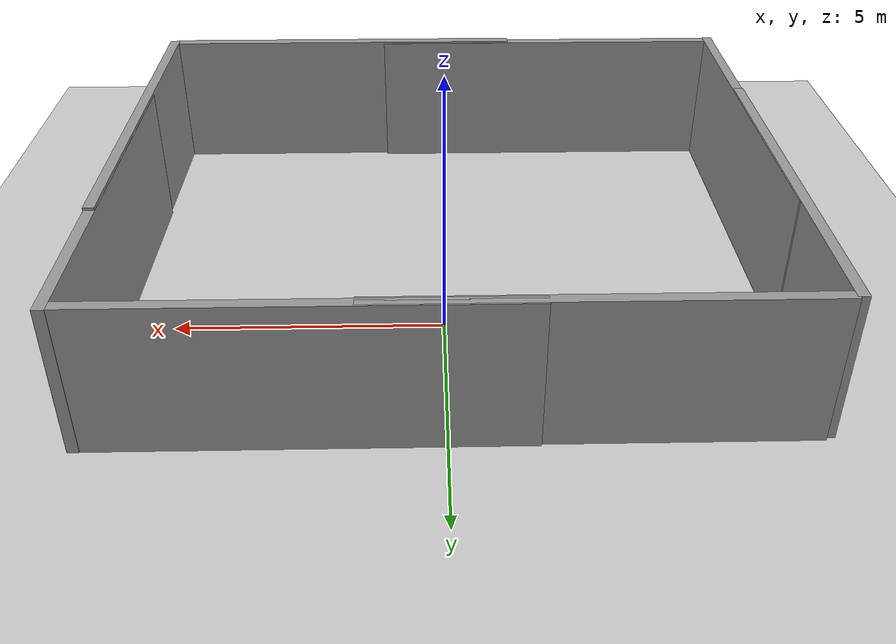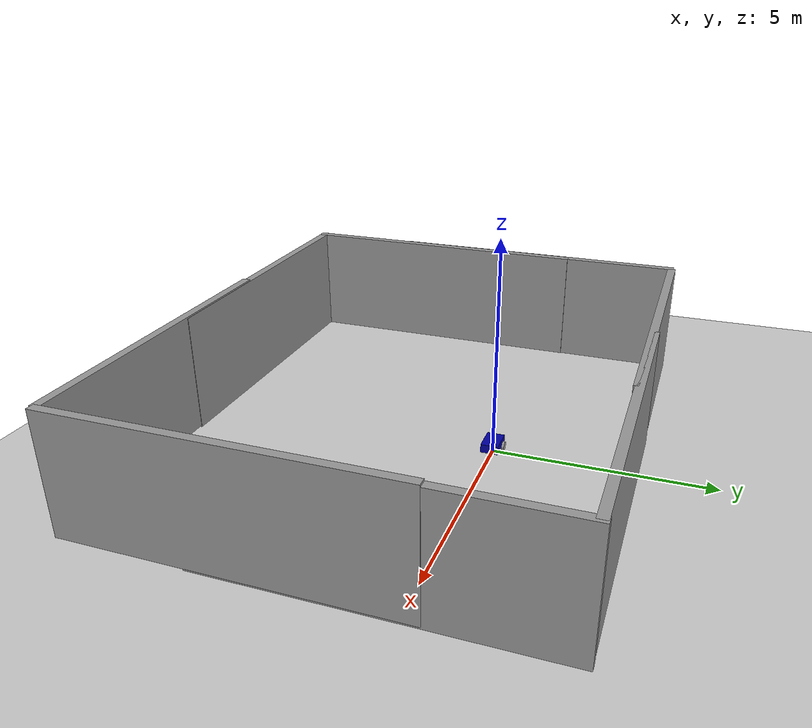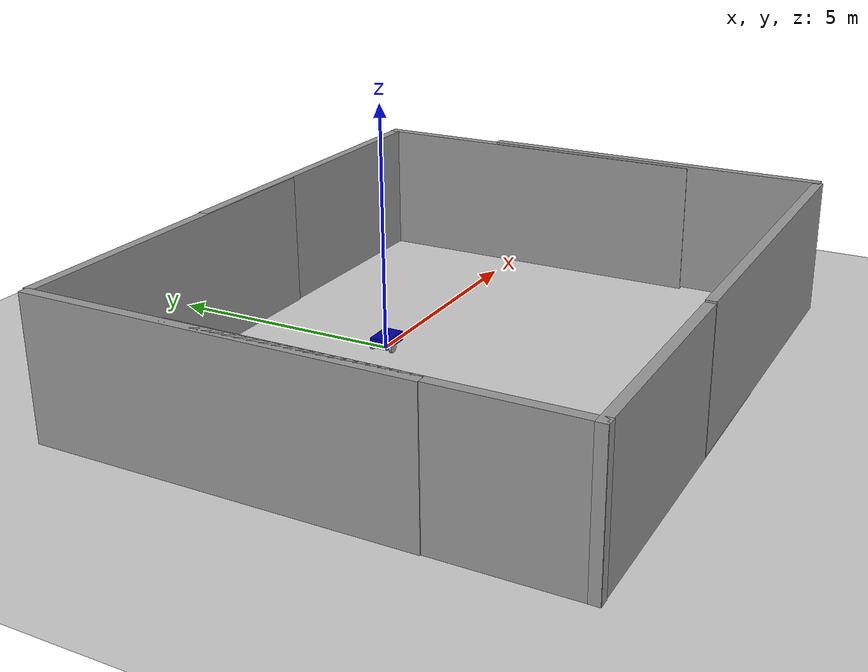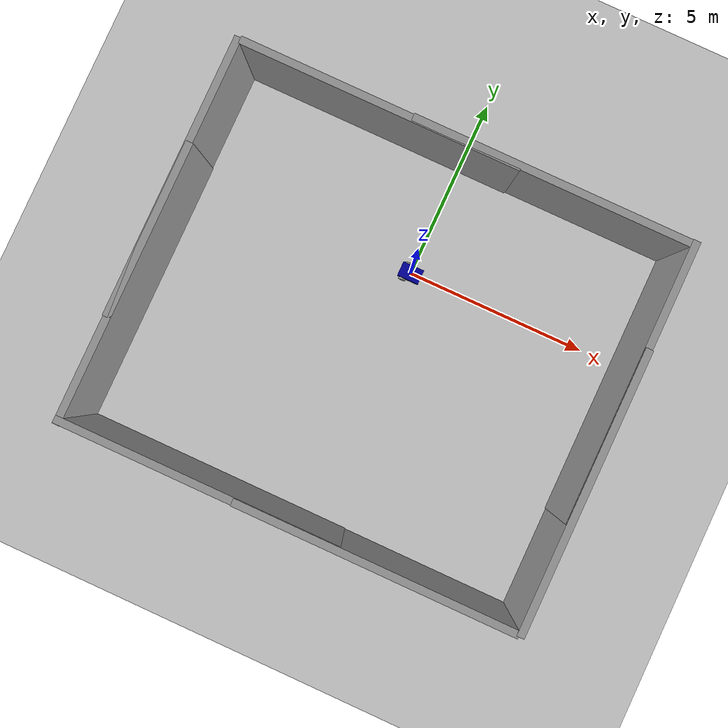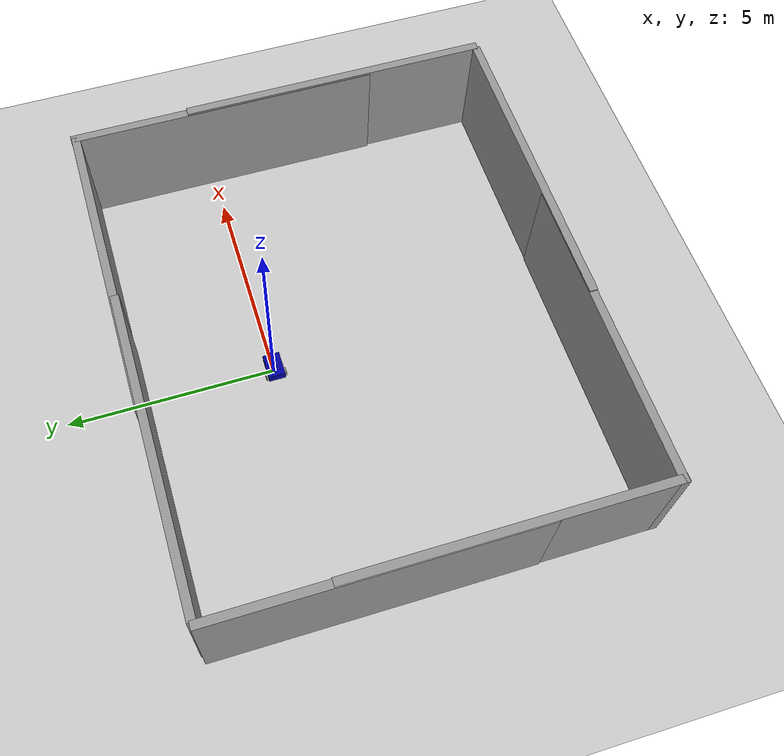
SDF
<sdf version="1.9">
 <world name="empty">
  <physics name="1ms" type="ignored">
   <max_step_size>0.001</max_step_size>
   <real_time_factor>1</real_time_factor>
   <real_time_update_rate>1000</real_time_update_rate>
  </physics>
  <plugin name="gz::sim::systems::Physics" filename="ignition-gazebo-physics-system"/>
  <plugin name="gz::sim::systems::UserCommands" filename="ignition-gazebo-user-commands-system"/>
  <plugin name="gz::sim::systems::SceneBroadcaster" filename="ignition-gazebo-scene-broadcaster-system"/>
  <plugin name="gz::sim::systems::Contact" filename="ignition-gazebo-contact-system"/>
  <gravity>0 0 -9.8</gravity>
  <magnetic_field>6e-06 2.3e-05 -4.2e-05</magnetic_field>
  <atmosphere type="adiabatic"/>
  <scene><ambient>0.4 0.4 0.4 1</ambient><background>0.7 0.7 0.7 1</background><shadows>true</shadows></scene>
  <model name="ground_plane">
   <static>true</static>
   <link name="link">
    <collision name="collision">
     <geometry><plane><normal>0 0 1</normal><size>100 100</size></plane></geometry>
    </collision>
    <visual name="visual">
     <geometry><plane><normal>0 0 1</normal><size>100 100</size></plane></geometry>
     <material>
      <ambient>0.8 0.8 0.8 1</ambient>
      <diffuse>0.8 0.8 0.8 1</diffuse>
      <specular>0.8 0.8 0.8 1</specular>
     </material>
    </visual>
    <inertial>
     <mass>1</mass>
     <inertia><ixx>1</ixx><ixy>0</ixy><ixz>0</ixz><iyy>1</iyy><iyz>0</iyz><izz>1</izz></inertia>
    </inertial>
   </link>
  </model>
  <model name="my_robot">
   <link name="base_footprint">
    <inertial>
     <pose>0.018182 0 0.186364 0 -0 0</pose>
     <mass>5.5</mass>
     <inertia>
      <ixx>0.094060599999999994</ixx>
      <ixy>0</ixy>
      <ixz>0.0136364</ixz>
      <iyy>0.195576</iyy>
      <iyz>0</iyz>
      <izz>0.235348</izz>
     </inertia>
    </inertial>
    <collision name="base_footprint_fixed_joint_lump__base_link_collision">
     <pose>0 0 0.2 0 0 0</pose>
     <geometry><box><size>0.6 0.4 0.2</size></box></geometry>
    </collision>
    <collision name="base_footprint_fixed_joint_lump__caster_wheel_link_collision_1">
     <pose>0.2 0 0.05 0 0 0</pose>
     <geometry><sphere><radius>0.050000000000000003</radius></sphere></geometry>
     <surface><friction><ode><mu>0.10000000000000001</mu><mu2>0.10000000000000001</mu2></ode></friction></surface>
    </collision>
    <visual name="base_footprint_fixed_joint_lump__base_link_visual">
     <pose>0 0 0.2 0 0 0</pose>
     <geometry><box><size>0.6 0.4 0.2</size></box></geometry>
     <material><diffuse>0 0 0.625 1</diffuse><ambient>0 0 0.625 1</ambient></material>
    </visual>
    <visual name="base_footprint_fixed_joint_lump__caster_wheel_link_visual_1">
     <pose>0.2 0 0.05 0 0 0</pose>
     <geometry><sphere><radius>0.050000000000000003</radius></sphere></geometry>
     <material><diffuse>0.625 0.625 0.625 1</diffuse><ambient>0.625 0.625 0.625 1</ambient></material>
    </visual>
   </link>
   <joint name="base_left_wheel_joint" type="revolute">
    <parent>base_footprint</parent>
    <child>left_wheel_link</child>
    <axis>
     <xyz>0 1 0</xyz>
     <limit>
      <lower>-10000000000000000</lower>
      <upper>10000000000000000</upper>
      <effort>inf</effort>
      <velocity>inf</velocity>
      <stiffness>100000000</stiffness>
      <dissipation>1</dissipation>
     </limit>
     <dynamics>
      <spring_reference>0</spring_reference>
      <spring_stiffness>0</spring_stiffness>
      <damping>0</damping>
      <friction>0</friction>
     </dynamics>
    </axis>
   </joint>
   <link name="left_wheel_link">
    <pose>-0.15 0.225 0.1 0 0 0</pose>
    <inertial>
     <pose>0 0 0 1.5708 -0 0</pose>
     <mass>1</mass>
     <inertia>
      <ixx>0.0027083300000000001</ixx>
      <ixy>0</ixy>
      <ixz>0</ixz>
      <iyy>0.0027083300000000001</iyy>
      <iyz>0</iyz>
      <izz>0.0050000000000000001</izz>
     </inertia>
    </inertial>
    <collision name="left_wheel_link_collision">
     <geometry><sphere><radius>0.10000000000000001</radius></sphere></geometry>
    </collision>
    <visual name="left_wheel_link_visual">
     <pose>0 0 0 1.570796326794896 0 0</pose>
     <geometry>
      <cylinder><length>0.050000000000000003</length><radius>0.10000000000000001</radius></cylinder>
     </geometry>
     <material><diffuse>0.625 0.625 0.625 1</diffuse><ambient>0.625 0.625 0.625 1</ambient></material>
    </visual>
   </link>
   <joint name="base_right_wheel_joint" type="revolute">
    <parent>base_footprint</parent>
    <child>right_wheel_link</child>
    <axis>
     <xyz>0 1 0</xyz>
     <limit>
      <lower>-10000000000000000</lower>
      <upper>10000000000000000</upper>
      <effort>inf</effort>
      <velocity>inf</velocity>
      <stiffness>100000000</stiffness>
      <dissipation>1</dissipation>
     </limit>
     <dynamics>
      <spring_reference>0</spring_reference>
      <spring_stiffness>0</spring_stiffness>
      <damping>0</damping>
      <friction>0</friction>
     </dynamics>
    </axis>
   </joint>
   <link name="right_wheel_link">
    <pose>-0.15 -0.225 0.1 -0 0 -0</pose>
    <inertial>
     <pose>0 0 0 1.5708 -0 0</pose>
     <mass>1</mass>
     <inertia>
      <ixx>0.0027083300000000001</ixx>
      <ixy>0</ixy>
      <ixz>0</ixz>
      <iyy>0.0027083300000000001</iyy>
      <iyz>0</iyz>
      <izz>0.0050000000000000001</izz>
     </inertia>
    </inertial>
    <collision name="right_wheel_link_collision">
     <geometry><sphere><radius>0.10000000000000001</radius></sphere></geometry>
    </collision>
    <visual name="right_wheel_link_visual">
     <pose>0 0 0 1.570796326794896 0 0</pose>
     <geometry>
      <cylinder><length>0.050000000000000003</length><radius>0.10000000000000001</radius></cylinder>
     </geometry>
     <material><diffuse>0.625 0.625 0.625 1</diffuse><ambient>0.625 0.625 0.625 1</ambient></material>
    </visual>
   </link>
   <plugin name="gz::sim::systems::DiffDrive" filename="gz-sim-diff-drive-system">
    <left_joint>base_left_wheel_joint</left_joint>
    <right_joint>base_right_wheel_joint</right_joint>
    <wheel_separation>0.45</wheel_separation>
    <wheel_radius>0.1</wheel_radius>
    <frame_id>odom</frame_id>
    <child_frame_id>base_footprint</child_frame_id>
   </plugin>
   <plugin name="gz::sim::systems::JointStatePublisher" filename="libignition-gazebo6-joint-state-publisher-system">
    <joint_name>base_left_wheel_joint</joint_name>
    <joint_name>base_right_wheel_joint</joint_name>
   </plugin>
   <frame name="base_caster_wheel_joint" attached_to="base_link"><pose>0.2 0 -0.05 0 -0 0</pose></frame>
   <frame name="caster_wheel_link" attached_to="base_caster_wheel_joint"/>
   <frame name="base_joint" attached_to="base_footprint"><pose>0 0 0.1 0 -0 0</pose></frame>
   <frame name="base_link" attached_to="base_joint"/>
   <pose>0 -0.016363 -0 0 -0 0</pose>
   <static>false</static>
  </model>
  <model name="grey_wall">
   <static>true</static>
   <link name="link">
    <pose>0 0 1.4 0 -0 0</pose>
    <collision name="collision"><geometry><box><size>7.5 0.2 2.8</size></box></geometry></collision>
    <visual name="visual">
     <cast_shadows>false</cast_shadows>
     <geometry><box><size>7.5 0.2 2.8</size></box></geometry>
     <material>
      <script>
       <uri>https://fuel.gazebosim.org/1.0/openrobotics/models/grey wall/3/files/materials/scripts</uri>
       <uri>https://fuel.gazebosim.org/1.0/openrobotics/models/grey wall/3/files/materials/textures</uri>
       <name>vrc/grey_wall</name>
      </script>
     </material>
    </visual>
    <inertial>
     <mass>1</mass>
     <inertia><ixx>1</ixx><ixy>0</ixy><ixz>0</ixz><iyy>1</iyy><iyz>0</iyz><izz>1</izz></inertia>
    </inertial>
   </link>
   <pose>2.19189 -7.04083 0.049805 0 -0 0</pose>
  </model>
  <model name="grey_wall_1">
   <static>true</static>
   <link name="link">
    <pose>0 0 1.4 0 -0 0</pose>
    <collision name="collision"><geometry><box><size>7.5 0.2 2.8</size></box></geometry></collision>
    <visual name="visual">
     <cast_shadows>false</cast_shadows>
     <geometry><box><size>7.5 0.2 2.8</size></box></geometry>
     <material>
      <script>
       <uri>https://fuel.gazebosim.org/1.0/openrobotics/models/grey wall/3/files/materials/scripts</uri>
       <uri>https://fuel.gazebosim.org/1.0/openrobotics/models/grey wall/3/files/materials/textures</uri>
       <name>vrc/grey_wall</name>
      </script>
     </material>
    </visual>
    <inertial>
     <mass>1</mass>
     <inertia><ixx>1</ixx><ixy>0</ixy><ixz>0</ixz><iyy>1</iyy><iyz>0</iyz><izz>1</izz></inertia>
    </inertial>
   </link>
   <pose>-2.50833 -7.03137 0.015466 0 -0 0</pose>
  </model>
  <model name="grey_wall_2">
   <static>true</static>
   <link name="link">
    <pose>0 0 1.4 0 -0 0</pose>
    <collision name="collision"><geometry><box><size>7.5 0.2 2.8</size></box></geometry></collision>
    <visual name="visual">
     <cast_shadows>false</cast_shadows>
     <geometry><box><size>7.5 0.2 2.8</size></box></geometry>
     <material>
      <script>
       <uri>https://fuel.gazebosim.org/1.0/openrobotics/models/grey wall/3/files/materials/scripts</uri>
       <uri>https://fuel.gazebosim.org/1.0/openrobotics/models/grey wall/3/files/materials/textures</uri>
       <name>vrc/grey_wall</name>
      </script>
     </material>
    </visual>
    <inertial>
     <mass>1</mass>
     <inertia><ixx>1</ixx><ixy>0</ixy><ixz>0</ixz><iyy>1</iyy><iyz>0</iyz><izz>1</izz></inertia>
    </inertial>
   </link>
   <pose>-6.15021 -3.39078 0.015466 0 0 -1.57227</pose>
  </model>
  <model name="grey_wall_2_1">
   <static>true</static>
   <link name="link">
    <pose>0 0 1.4 0 -0 0</pose>
    <collision name="collision"><geometry><box><size>7.5 0.2 2.8</size></box></geometry></collision>
    <visual name="visual">
     <cast_shadows>false</cast_shadows>
     <geometry><box><size>7.5 0.2 2.8</size></box></geometry>
     <material>
      <script>
       <uri>https://fuel.gazebosim.org/1.0/openrobotics/models/grey wall/3/files/materials/scripts</uri>
       <uri>https://fuel.gazebosim.org/1.0/openrobotics/models/grey wall/3/files/materials/textures</uri>
       <name>vrc/grey_wall</name>
      </script>
     </material>
    </visual>
    <inertial>
     <mass>1</mass>
     <inertia><ixx>1</ixx><ixy>0</ixy><ixz>0</ixz><iyy>1</iyy><iyz>0</iyz><izz>1</izz></inertia>
    </inertial>
   </link>
   <pose>-6.16834 -0.56191 0.015466 0 0 -1.57227</pose>
  </model>
  <model name="grey_wall_1_1">
   <static>true</static>
   <link name="link">
    <pose>0 0 1.4 0 -0 0</pose>
    <collision name="collision"><geometry><box><size>7.5 0.2 2.8</size></box></geometry></collision>
    <visual name="visual">
     <cast_shadows>false</cast_shadows>
     <geometry><box><size>7.5 0.2 2.8</size></box></geometry>
     <material>
      <script>
       <uri>https://fuel.gazebosim.org/1.0/openrobotics/models/grey wall/3/files/materials/scripts</uri>
       <uri>https://fuel.gazebosim.org/1.0/openrobotics/models/grey wall/3/files/materials/textures</uri>
       <name>vrc/grey_wall</name>
      </script>
     </material>
    </visual>
    <inertial>
     <mass>1</mass>
     <inertia><ixx>1</ixx><ixy>0</ixy><ixz>0</ixz><iyy>1</iyy><iyz>0</iyz><izz>1</izz></inertia>
    </inertial>
   </link>
   <pose>-2.35379 3.13966 0.015466 0 -0 0</pose>
  </model>
  <model name="grey_wall_1_2">
   <static>true</static>
   <link name="link">
    <pose>0 0 1.4 0 -0 0</pose>
    <collision name="collision"><geometry><box><size>7.5 0.2 2.8</size></box></geometry></collision>
    <visual name="visual">
     <cast_shadows>false</cast_shadows>
     <geometry><box><size>7.5 0.2 2.8</size></box></geometry>
     <material>
      <script>
       <uri>https://fuel.gazebosim.org/1.0/openrobotics/models/grey wall/3/files/materials/scripts</uri>
       <uri>https://fuel.gazebosim.org/1.0/openrobotics/models/grey wall/3/files/materials/textures</uri>
       <name>vrc/grey_wall</name>
      </script>
     </material>
    </visual>
    <inertial>
     <mass>1</mass>
     <inertia><ixx>1</ixx><ixy>0</ixy><ixz>0</ixz><iyy>1</iyy><iyz>0</iyz><izz>1</izz></inertia>
    </inertial>
   </link>
   <pose>2.25261 3.17008 0.015466 0 -0 0</pose>
  </model>
  <model name="grey_wall_2_1_1">
   <static>true</static>
   <link name="link">
    <pose>0 0 1.4 0 -0 0</pose>
    <collision name="collision"><geometry><box><size>7.5 0.2 2.8</size></box></geometry></collision>
    <visual name="visual">
     <cast_shadows>false</cast_shadows>
     <geometry><box><size>7.5 0.2 2.8</size></box></geometry>
     <material>
      <script>
       <uri>https://fuel.gazebosim.org/1.0/openrobotics/models/grey wall/3/files/materials/scripts</uri>
       <uri>https://fuel.gazebosim.org/1.0/openrobotics/models/grey wall/3/files/materials/textures</uri>
       <name>vrc/grey_wall</name>
      </script>
     </material>
    </visual>
    <inertial>
     <mass>1</mass>
     <inertia><ixx>1</ixx><ixy>0</ixy><ixz>0</ixz><iyy>1</iyy><iyz>0</iyz><izz>1</izz></inertia>
    </inertial>
   </link>
   <pose>5.97388 -0.468798 0.015466 0 0 -1.57227</pose>
  </model>
  <model name="grey_wall_2_1_2">
   <static>true</static>
   <link name="link">
    <pose>0 0 1.4 0 -0 0</pose>
    <collision name="collision"><geometry><box><size>7.5 0.2 2.8</size></box></geometry></collision>
    <visual name="visual">
     <cast_shadows>false</cast_shadows>
     <geometry><box><size>7.5 0.2 2.8</size></box></geometry>
     <material>
      <script>
       <uri>https://fuel.gazebosim.org/1.0/openrobotics/models/grey wall/3/files/materials/scripts</uri>
       <uri>https://fuel.gazebosim.org/1.0/openrobotics/models/grey wall/3/files/materials/textures</uri>
       <name>vrc/grey_wall</name>
      </script>
     </material>
    </visual>
    <inertial>
     <mass>1</mass>
     <inertia><ixx>1</ixx><ixy>0</ixy><ixz>0</ixz><iyy>1</iyy><iyz>0</iyz><izz>1</izz></inertia>
    </inertial>
   </link>
   <pose>5.98339 -3.33089 0.061627 0 0 -1.57227</pose>
  </model>
  <light name="sun" type="directional">
   <pose>0 0 10 0 -0 0</pose>
   <intensity>1</intensity>
   <direction>-0.5 0.1 -0.9</direction>
   <diffuse>0.8 0.8 0.8 1</diffuse>
   <specular>0.2 0.2 0.2 1</specular>
   <attenuation>
    <range>1000</range>
    <linear>0.01</linear>
    <constant>0.90000000000000002</constant>
    <quadratic>0.001</quadratic>
   </attenuation>
   <spot><inner_angle>0</inner_angle><outer_angle>0</outer_angle><falloff>0</falloff></spot>
  </light>
 </world>
</sdf>
